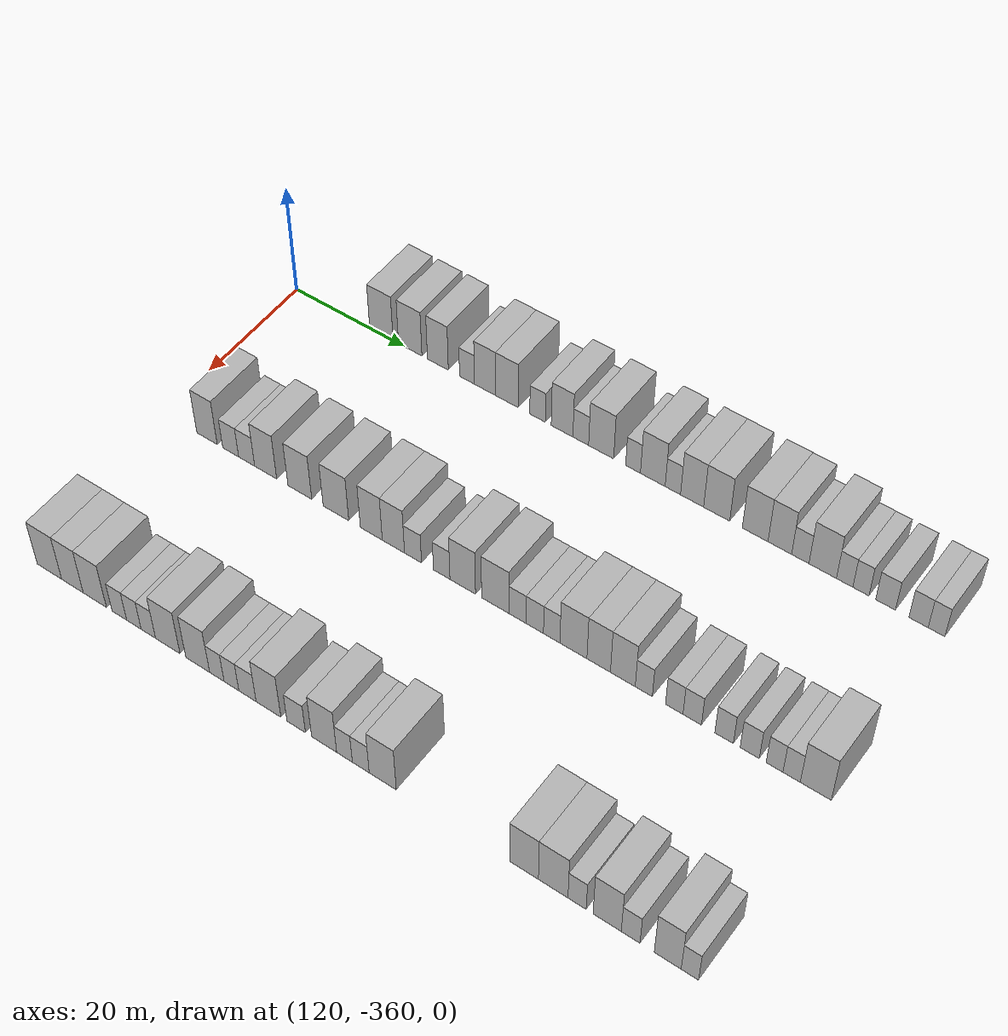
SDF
<sdf version="1.6">
 <world name="default">
  <model name="building_698">
   <static>1</static>
   <pose>115.0000 -344.3239 0 0.000000 0.000000 0.000000</pose>
   <link name="link">
    <pose>0 0 4.50 0 0 0</pose>
    <collision name="collision"><geometry><box><size>10.0000 4.2863 9.0000</size></box></geometry></collision>
    <visual name="visual">
     <cast_shadows>0</cast_shadows>
     <geometry><box><size>10.0000 4.2863 9.0000</size></box></geometry>
     <material>
      <script>
       <uri>model://HANNAS_wall/materials/scripts</uri>
       <uri>model://HANNAS_wall/materials/textures</uri>
       <name>vrc/HANNAS_wall</name>
      </script>
     </material>
    </visual>
   </link>
  </model>
  <model name="building_699">
   <static>1</static>
   <pose>115.0000 -339.0584 0 0.000000 0.000000 0.000000</pose>
   <link name="link">
    <pose>0 0 4.50 0 0 0</pose>
    <collision name="collision"><geometry><box><size>10.0000 4.2447 9.0000</size></box></geometry></collision>
    <visual name="visual">
     <cast_shadows>0</cast_shadows>
     <geometry><box><size>10.0000 4.2447 9.0000</size></box></geometry>
     <material>
      <script>
       <uri>model://HANNAS_wall/materials/scripts</uri>
       <uri>model://HANNAS_wall/materials/textures</uri>
       <name>vrc/HANNAS_wall</name>
      </script>
     </material>
    </visual>
   </link>
  </model>
  <model name="building_700">
   <static>1</static>
   <pose>115.0000 -334.0621 0 0.000000 0.000000 0.000000</pose>
   <link name="link">
    <pose>0 0 4.50 0 0 0</pose>
    <collision name="collision"><geometry><box><size>10.0000 3.7480 9.0000</size></box></geometry></collision>
    <visual name="visual">
     <cast_shadows>0</cast_shadows>
     <geometry><box><size>10.0000 3.7480 9.0000</size></box></geometry>
     <material>
      <script>
       <uri>model://HANNAS_wall/materials/scripts</uri>
       <uri>model://HANNAS_wall/materials/textures</uri>
       <name>vrc/HANNAS_wall</name>
      </script>
     </material>
    </visual>
   </link>
  </model>
  <model name="building_701">
   <static>1</static>
   <pose>115.0000 -328.8689 0 0.000000 0.000000 0.000000</pose>
   <link name="link">
    <pose>0 0 3.00 0 0 0</pose>
    <collision name="collision"><geometry><box><size>10.0000 2.6384 6.0000</size></box></geometry></collision>
    <visual name="visual">
     <cast_shadows>0</cast_shadows>
     <geometry><box><size>10.0000 2.6384 6.0000</size></box></geometry>
     <material>
      <script>
       <uri>model://HANNAS_wall/materials/scripts</uri>
       <uri>model://HANNAS_wall/materials/textures</uri>
       <name>vrc/HANNAS_wall</name>
      </script>
     </material>
    </visual>
   </link>
  </model>
  <model name="building_702">
   <static>1</static>
   <pose>115.0000 -325.6895 0 0.000000 0.000000 0.000000</pose>
   <link name="link">
    <pose>0 0 4.50 0 0 0</pose>
    <collision name="collision"><geometry><box><size>10.0000 3.7204 9.0000</size></box></geometry></collision>
    <visual name="visual">
     <cast_shadows>0</cast_shadows>
     <geometry><box><size>10.0000 3.7204 9.0000</size></box></geometry>
     <material>
      <script>
       <uri>model://HANNAS_wall/materials/scripts</uri>
       <uri>model://HANNAS_wall/materials/textures</uri>
       <name>vrc/HANNAS_wall</name>
      </script>
     </material>
    </visual>
   </link>
  </model>
  <model name="building_703">
   <static>1</static>
   <pose>115.0000 -321.8538 0 0.000000 0.000000 0.000000</pose>
   <link name="link">
    <pose>0 0 4.50 0 0 0</pose>
    <collision name="collision"><geometry><box><size>10.0000 3.9509 9.0000</size></box></geometry></collision>
    <visual name="visual">
     <cast_shadows>0</cast_shadows>
     <geometry><box><size>10.0000 3.9509 9.0000</size></box></geometry>
     <material>
      <script>
       <uri>model://HANNAS_wall/materials/scripts</uri>
       <uri>model://HANNAS_wall/materials/textures</uri>
       <name>vrc/HANNAS_wall</name>
      </script>
     </material>
    </visual>
   </link>
  </model>
  <model name="building_704">
   <static>1</static>
   <pose>115.0000 -316.5359 0 0.000000 0.000000 0.000000</pose>
   <link name="link">
    <pose>0 0 3.00 0 0 0</pose>
    <collision name="collision"><geometry><box><size>10.0000 2.6850 6.0000</size></box></geometry></collision>
    <visual name="visual">
     <cast_shadows>0</cast_shadows>
     <geometry><box><size>10.0000 2.6850 6.0000</size></box></geometry>
     <material>
      <script>
       <uri>model://HANNAS_wall/materials/scripts</uri>
       <uri>model://HANNAS_wall/materials/textures</uri>
       <name>vrc/HANNAS_wall</name>
      </script>
     </material>
    </visual>
   </link>
  </model>
  <model name="building_705">
   <static>1</static>
   <pose>115.0000 -312.3453 0 0.000000 0.000000 0.000000</pose>
   <link name="link">
    <pose>0 0 4.50 0 0 0</pose>
    <collision name="collision"><geometry><box><size>10.0000 3.6962 9.0000</size></box></geometry></collision>
    <visual name="visual">
     <cast_shadows>0</cast_shadows>
     <geometry><box><size>10.0000 3.6962 9.0000</size></box></geometry>
     <material>
      <script>
       <uri>model://HANNAS_wall/materials/scripts</uri>
       <uri>model://HANNAS_wall/materials/textures</uri>
       <name>vrc/HANNAS_wall</name>
      </script>
     </material>
    </visual>
   </link>
  </model>
  <model name="building_706">
   <static>1</static>
   <pose>115.0000 -309.1652 0 0.000000 0.000000 0.000000</pose>
   <link name="link">
    <pose>0 0 3.00 0 0 0</pose>
    <collision name="collision"><geometry><box><size>10.0000 2.6639 6.0000</size></box></geometry></collision>
    <visual name="visual">
     <cast_shadows>0</cast_shadows>
     <geometry><box><size>10.0000 2.6639 6.0000</size></box></geometry>
     <material>
      <script>
       <uri>model://HANNAS_wall/materials/scripts</uri>
       <uri>model://HANNAS_wall/materials/textures</uri>
       <name>vrc/HANNAS_wall</name>
      </script>
     </material>
    </visual>
   </link>
  </model>
  <model name="building_707">
   <static>1</static>
   <pose>115.0000 -305.7314 0 0.000000 0.000000 0.000000</pose>
   <link name="link">
    <pose>0 0 4.50 0 0 0</pose>
    <collision name="collision"><geometry><box><size>10.0000 4.2036 9.0000</size></box></geometry></collision>
    <visual name="visual">
     <cast_shadows>0</cast_shadows>
     <geometry><box><size>10.0000 4.2036 9.0000</size></box></geometry>
     <material>
      <script>
       <uri>model://HANNAS_wall/materials/scripts</uri>
       <uri>model://HANNAS_wall/materials/textures</uri>
       <name>vrc/HANNAS_wall</name>
      </script>
     </material>
    </visual>
   </link>
  </model>
  <model name="building_708">
   <static>1</static>
   <pose>115.0000 -300.4046 0 0.000000 0.000000 0.000000</pose>
   <link name="link">
    <pose>0 0 3.00 0 0 0</pose>
    <collision name="collision"><geometry><box><size>10.0000 2.4500 6.0000</size></box></geometry></collision>
    <visual name="visual">
     <cast_shadows>0</cast_shadows>
     <geometry><box><size>10.0000 2.4500 6.0000</size></box></geometry>
     <material>
      <script>
       <uri>model://HANNAS_wall/materials/scripts</uri>
       <uri>model://HANNAS_wall/materials/textures</uri>
       <name>vrc/HANNAS_wall</name>
      </script>
     </material>
    </visual>
   </link>
  </model>
  <model name="building_709">
   <static>1</static>
   <pose>115.0000 -297.1485 0 0.000000 0.000000 0.000000</pose>
   <link name="link">
    <pose>0 0 4.50 0 0 0</pose>
    <collision name="collision"><geometry><box><size>10.0000 4.0622 9.0000</size></box></geometry></collision>
    <visual name="visual">
     <cast_shadows>0</cast_shadows>
     <geometry><box><size>10.0000 4.0622 9.0000</size></box></geometry>
     <material>
      <script>
       <uri>model://HANNAS_wall/materials/scripts</uri>
       <uri>model://HANNAS_wall/materials/textures</uri>
       <name>vrc/HANNAS_wall</name>
      </script>
     </material>
    </visual>
   </link>
  </model>
  <model name="building_710">
   <static>1</static>
   <pose>115.0000 -293.8592 0 0.000000 0.000000 0.000000</pose>
   <link name="link">
    <pose>0 0 3.00 0 0 0</pose>
    <collision name="collision"><geometry><box><size>10.0000 2.5164 6.0000</size></box></geometry></collision>
    <visual name="visual">
     <cast_shadows>0</cast_shadows>
     <geometry><box><size>10.0000 2.5164 6.0000</size></box></geometry>
     <material>
      <script>
       <uri>model://HANNAS_wall/materials/scripts</uri>
       <uri>model://HANNAS_wall/materials/textures</uri>
       <name>vrc/HANNAS_wall</name>
      </script>
     </material>
    </visual>
   </link>
  </model>
  <model name="building_711">
   <static>1</static>
   <pose>115.0000 -290.7295 0 0.000000 0.000000 0.000000</pose>
   <link name="link">
    <pose>0 0 4.50 0 0 0</pose>
    <collision name="collision"><geometry><box><size>10.0000 3.7432 9.0000</size></box></geometry></collision>
    <visual name="visual">
     <cast_shadows>0</cast_shadows>
     <geometry><box><size>10.0000 3.7432 9.0000</size></box></geometry>
     <material>
      <script>
       <uri>model://HANNAS_wall/materials/scripts</uri>
       <uri>model://HANNAS_wall/materials/textures</uri>
       <name>vrc/HANNAS_wall</name>
      </script>
     </material>
    </visual>
   </link>
  </model>
  <model name="building_712">
   <static>1</static>
   <pose>115.0000 -286.7610 0 0.000000 0.000000 0.000000</pose>
   <link name="link">
    <pose>0 0 4.50 0 0 0</pose>
    <collision name="collision"><geometry><box><size>10.0000 4.1938 9.0000</size></box></geometry></collision>
    <visual name="visual">
     <cast_shadows>0</cast_shadows>
     <geometry><box><size>10.0000 4.1938 9.0000</size></box></geometry>
     <material>
      <script>
       <uri>model://HANNAS_wall/materials/scripts</uri>
       <uri>model://HANNAS_wall/materials/textures</uri>
       <name>vrc/HANNAS_wall</name>
      </script>
     </material>
    </visual>
   </link>
  </model>
  <model name="building_713">
   <static>1</static>
   <pose>115.0000 -280.6291 0 0.000000 0.000000 0.000000</pose>
   <link name="link">
    <pose>0 0 4.50 0 0 0</pose>
    <collision name="collision"><geometry><box><size>10.0000 4.0701 9.0000</size></box></geometry></collision>
    <visual name="visual">
     <cast_shadows>0</cast_shadows>
     <geometry><box><size>10.0000 4.0701 9.0000</size></box></geometry>
     <material>
      <script>
       <uri>model://HANNAS_wall/materials/scripts</uri>
       <uri>model://HANNAS_wall/materials/textures</uri>
       <name>vrc/HANNAS_wall</name>
      </script>
     </material>
    </visual>
   </link>
  </model>
  <model name="building_714">
   <static>1</static>
   <pose>115.0000 -276.7433 0 0.000000 0.000000 0.000000</pose>
   <link name="link">
    <pose>0 0 4.50 0 0 0</pose>
    <collision name="collision"><geometry><box><size>10.0000 3.7015 9.0000</size></box></geometry></collision>
    <visual name="visual">
     <cast_shadows>0</cast_shadows>
     <geometry><box><size>10.0000 3.7015 9.0000</size></box></geometry>
     <material>
      <script>
       <uri>model://HANNAS_wall/materials/scripts</uri>
       <uri>model://HANNAS_wall/materials/textures</uri>
       <name>vrc/HANNAS_wall</name>
      </script>
     </material>
    </visual>
   </link>
  </model>
  <model name="building_715">
   <static>1</static>
   <pose>115.0000 -273.5481 0 0.000000 0.000000 0.000000</pose>
   <link name="link">
    <pose>0 0 3.00 0 0 0</pose>
    <collision name="collision"><geometry><box><size>10.0000 2.6889 6.0000</size></box></geometry></collision>
    <visual name="visual">
     <cast_shadows>0</cast_shadows>
     <geometry><box><size>10.0000 2.6889 6.0000</size></box></geometry>
     <material>
      <script>
       <uri>model://HANNAS_wall/materials/scripts</uri>
       <uri>model://HANNAS_wall/materials/textures</uri>
       <name>vrc/HANNAS_wall</name>
      </script>
     </material>
    </visual>
   </link>
  </model>
  <model name="building_716">
   <static>1</static>
   <pose>115.0000 -270.0786 0 0.000000 0.000000 0.000000</pose>
   <link name="link">
    <pose>0 0 4.50 0 0 0</pose>
    <collision name="collision"><geometry><box><size>10.0000 4.2502 9.0000</size></box></geometry></collision>
    <visual name="visual">
     <cast_shadows>0</cast_shadows>
     <geometry><box><size>10.0000 4.2502 9.0000</size></box></geometry>
     <material>
      <script>
       <uri>model://HANNAS_wall/materials/scripts</uri>
       <uri>model://HANNAS_wall/materials/textures</uri>
       <name>vrc/HANNAS_wall</name>
      </script>
     </material>
    </visual>
   </link>
  </model>
  <model name="building_717">
   <static>1</static>
   <pose>115.0000 -266.7008 0 0.000000 0.000000 0.000000</pose>
   <link name="link">
    <pose>0 0 3.00 0 0 0</pose>
    <collision name="collision"><geometry><box><size>10.0000 2.5054 6.0000</size></box></geometry></collision>
    <visual name="visual">
     <cast_shadows>0</cast_shadows>
     <geometry><box><size>10.0000 2.5054 6.0000</size></box></geometry>
     <material>
      <script>
       <uri>model://HANNAS_wall/materials/scripts</uri>
       <uri>model://HANNAS_wall/materials/textures</uri>
       <name>vrc/HANNAS_wall</name>
      </script>
     </material>
    </visual>
   </link>
  </model>
  <model name="building_718">
   <static>1</static>
   <pose>115.0000 -264.2221 0 0.000000 0.000000 0.000000</pose>
   <link name="link">
    <pose>0 0 3.00 0 0 0</pose>
    <collision name="collision"><geometry><box><size>10.0000 2.4522 6.0000</size></box></geometry></collision>
    <visual name="visual">
     <cast_shadows>0</cast_shadows>
     <geometry><box><size>10.0000 2.4522 6.0000</size></box></geometry>
     <material>
      <script>
       <uri>model://HANNAS_wall/materials/scripts</uri>
       <uri>model://HANNAS_wall/materials/textures</uri>
       <name>vrc/HANNAS_wall</name>
      </script>
     </material>
    </visual>
   </link>
  </model>
  <model name="building_719">
   <static>1</static>
   <pose>115.0000 -260.5060 0 0.000000 0.000000 0.000000</pose>
   <link name="link">
    <pose>0 0 3.00 0 0 0</pose>
    <collision name="collision"><geometry><box><size>10.0000 2.9799 6.0000</size></box></geometry></collision>
    <visual name="visual">
     <cast_shadows>0</cast_shadows>
     <geometry><box><size>10.0000 2.9799 6.0000</size></box></geometry>
     <material>
      <script>
       <uri>model://HANNAS_wall/materials/scripts</uri>
       <uri>model://HANNAS_wall/materials/textures</uri>
       <name>vrc/HANNAS_wall</name>
      </script>
     </material>
    </visual>
   </link>
  </model>
  <model name="building_720">
   <static>1</static>
   <pose>115.0000 -255.5807 0 0.000000 0.000000 0.000000</pose>
   <link name="link">
    <pose>0 0 3.00 0 0 0</pose>
    <collision name="collision"><geometry><box><size>10.0000 2.8708 6.0000</size></box></geometry></collision>
    <visual name="visual">
     <cast_shadows>0</cast_shadows>
     <geometry><box><size>10.0000 2.8708 6.0000</size></box></geometry>
     <material>
      <script>
       <uri>model://HANNAS_wall/materials/scripts</uri>
       <uri>model://HANNAS_wall/materials/textures</uri>
       <name>vrc/HANNAS_wall</name>
      </script>
     </material>
    </visual>
   </link>
  </model>
  <model name="building_721">
   <static>1</static>
   <pose>115.0000 -252.9093 0 0.000000 0.000000 0.000000</pose>
   <link name="link">
    <pose>0 0 3.00 0 0 0</pose>
    <collision name="collision"><geometry><box><size>10.0000 2.4721 6.0000</size></box></geometry></collision>
    <visual name="visual">
     <cast_shadows>0</cast_shadows>
     <geometry><box><size>10.0000 2.4721 6.0000</size></box></geometry>
     <material>
      <script>
       <uri>model://HANNAS_wall/materials/scripts</uri>
       <uri>model://HANNAS_wall/materials/textures</uri>
       <name>vrc/HANNAS_wall</name>
      </script>
     </material>
    </visual>
   </link>
  </model>
  <model name="building_921">
   <static>1</static>
   <pose>145.0000 -352.0130 0 0.000000 0.000000 0.000000</pose>
   <link name="link">
    <pose>0 0 4.50 0 0 0</pose>
    <collision name="collision"><geometry><box><size>10.0000 3.7323 9.0000</size></box></geometry></collision>
    <visual name="visual">
     <cast_shadows>0</cast_shadows>
     <geometry><box><size>10.0000 3.7323 9.0000</size></box></geometry>
     <material>
      <script>
       <uri>model://HANNAS_wall/materials/scripts</uri>
       <uri>model://HANNAS_wall/materials/textures</uri>
       <name>vrc/HANNAS_wall</name>
      </script>
     </material>
    </visual>
   </link>
  </model>
  <model name="building_922">
   <static>1</static>
   <pose>145.0000 -347.7058 0 0.000000 0.000000 0.000000</pose>
   <link name="link">
    <pose>0 0 3.00 0 0 0</pose>
    <collision name="collision"><geometry><box><size>10.0000 2.8821 6.0000</size></box></geometry></collision>
    <visual name="visual">
     <cast_shadows>0</cast_shadows>
     <geometry><box><size>10.0000 2.8821 6.0000</size></box></geometry>
     <material>
      <script>
       <uri>model://HANNAS_wall/materials/scripts</uri>
       <uri>model://HANNAS_wall/materials/textures</uri>
       <name>vrc/HANNAS_wall</name>
      </script>
     </material>
    </visual>
   </link>
  </model>
  <model name="building_923">
   <static>1</static>
   <pose>145.0000 -344.8221 0 0.000000 0.000000 0.000000</pose>
   <link name="link">
    <pose>0 0 3.00 0 0 0</pose>
    <collision name="collision"><geometry><box><size>10.0000 2.8853 6.0000</size></box></geometry></collision>
    <visual name="visual">
     <cast_shadows>0</cast_shadows>
     <geometry><box><size>10.0000 2.8853 6.0000</size></box></geometry>
     <material>
      <script>
       <uri>model://HANNAS_wall/materials/scripts</uri>
       <uri>model://HANNAS_wall/materials/textures</uri>
       <name>vrc/HANNAS_wall</name>
      </script>
     </material>
    </visual>
   </link>
  </model>
  <model name="building_924">
   <static>1</static>
   <pose>145.0000 -341.4130 0 0.000000 0.000000 0.000000</pose>
   <link name="link">
    <pose>0 0 4.50 0 0 0</pose>
    <collision name="collision"><geometry><box><size>10.0000 3.9329 9.0000</size></box></geometry></collision>
    <visual name="visual">
     <cast_shadows>0</cast_shadows>
     <geometry><box><size>10.0000 3.9329 9.0000</size></box></geometry>
     <material>
      <script>
       <uri>model://HANNAS_wall/materials/scripts</uri>
       <uri>model://HANNAS_wall/materials/textures</uri>
       <name>vrc/HANNAS_wall</name>
      </script>
     </material>
    </visual>
   </link>
  </model>
  <model name="building_925">
   <static>1</static>
   <pose>145.0000 -335.3562 0 0.000000 0.000000 0.000000</pose>
   <link name="link">
    <pose>0 0 4.50 0 0 0</pose>
    <collision name="collision"><geometry><box><size>10.0000 4.1808 9.0000</size></box></geometry></collision>
    <visual name="visual">
     <cast_shadows>0</cast_shadows>
     <geometry><box><size>10.0000 4.1808 9.0000</size></box></geometry>
     <material>
      <script>
       <uri>model://HANNAS_wall/materials/scripts</uri>
       <uri>model://HANNAS_wall/materials/textures</uri>
       <name>vrc/HANNAS_wall</name>
      </script>
     </material>
    </visual>
   </link>
  </model>
  <model name="building_926">
   <static>1</static>
   <pose>145.0000 -329.0455 0 0.000000 0.000000 0.000000</pose>
   <link name="link">
    <pose>0 0 4.50 0 0 0</pose>
    <collision name="collision"><geometry><box><size>10.0000 4.4404 9.0000</size></box></geometry></collision>
    <visual name="visual">
     <cast_shadows>0</cast_shadows>
     <geometry><box><size>10.0000 4.4404 9.0000</size></box></geometry>
     <material>
      <script>
       <uri>model://HANNAS_wall/materials/scripts</uri>
       <uri>model://HANNAS_wall/materials/textures</uri>
       <name>vrc/HANNAS_wall</name>
      </script>
     </material>
    </visual>
   </link>
  </model>
  <model name="building_927">
   <static>1</static>
   <pose>145.0000 -322.9554 0 0.000000 0.000000 0.000000</pose>
   <link name="link">
    <pose>0 0 4.50 0 0 0</pose>
    <collision name="collision"><geometry><box><size>10.0000 3.7397 9.0000</size></box></geometry></collision>
    <visual name="visual">
     <cast_shadows>0</cast_shadows>
     <geometry><box><size>10.0000 3.7397 9.0000</size></box></geometry>
     <material>
      <script>
       <uri>model://HANNAS_wall/materials/scripts</uri>
       <uri>model://HANNAS_wall/materials/textures</uri>
       <name>vrc/HANNAS_wall</name>
      </script>
     </material>
    </visual>
   </link>
  </model>
  <model name="building_928">
   <static>1</static>
   <pose>145.0000 -319.2041 0 0.000000 0.000000 0.000000</pose>
   <link name="link">
    <pose>0 0 4.50 0 0 0</pose>
    <collision name="collision"><geometry><box><size>10.0000 3.7630 9.0000</size></box></geometry></collision>
    <visual name="visual">
     <cast_shadows>0</cast_shadows>
     <geometry><box><size>10.0000 3.7630 9.0000</size></box></geometry>
     <material>
      <script>
       <uri>model://HANNAS_wall/materials/scripts</uri>
       <uri>model://HANNAS_wall/materials/textures</uri>
       <name>vrc/HANNAS_wall</name>
      </script>
     </material>
    </visual>
   </link>
  </model>
  <model name="building_929">
   <static>1</static>
   <pose>145.0000 -315.9001 0 0.000000 0.000000 0.000000</pose>
   <link name="link">
    <pose>0 0 3.00 0 0 0</pose>
    <collision name="collision"><geometry><box><size>10.0000 2.8450 6.0000</size></box></geometry></collision>
    <visual name="visual">
     <cast_shadows>0</cast_shadows>
     <geometry><box><size>10.0000 2.8450 6.0000</size></box></geometry>
     <material>
      <script>
       <uri>model://HANNAS_wall/materials/scripts</uri>
       <uri>model://HANNAS_wall/materials/textures</uri>
       <name>vrc/HANNAS_wall</name>
      </script>
     </material>
    </visual>
   </link>
  </model>
  <model name="building_930">
   <static>1</static>
   <pose>145.0000 -311.1105 0 0.000000 0.000000 0.000000</pose>
   <link name="link">
    <pose>0 0 3.00 0 0 0</pose>
    <collision name="collision"><geometry><box><size>10.0000 2.7343 6.0000</size></box></geometry></collision>
    <visual name="visual">
     <cast_shadows>0</cast_shadows>
     <geometry><box><size>10.0000 2.7343 6.0000</size></box></geometry>
     <material>
      <script>
       <uri>model://HANNAS_wall/materials/scripts</uri>
       <uri>model://HANNAS_wall/materials/textures</uri>
       <name>vrc/HANNAS_wall</name>
      </script>
     </material>
    </visual>
   </link>
  </model>
  <model name="building_931">
   <static>1</static>
   <pose>145.0000 -307.6409 0 0.000000 0.000000 0.000000</pose>
   <link name="link">
    <pose>0 0 4.50 0 0 0</pose>
    <collision name="collision"><geometry><box><size>10.0000 4.2047 9.0000</size></box></geometry></collision>
    <visual name="visual">
     <cast_shadows>0</cast_shadows>
     <geometry><box><size>10.0000 4.2047 9.0000</size></box></geometry>
     <material>
      <script>
       <uri>model://HANNAS_wall/materials/scripts</uri>
       <uri>model://HANNAS_wall/materials/textures</uri>
       <name>vrc/HANNAS_wall</name>
      </script>
     </material>
    </visual>
   </link>
  </model>
  <model name="building_932">
   <static>1</static>
   <pose>145.0000 -302.3242 0 0.000000 0.000000 0.000000</pose>
   <link name="link">
    <pose>0 0 4.50 0 0 0</pose>
    <collision name="collision"><geometry><box><size>10.0000 4.4288 9.0000</size></box></geometry></collision>
    <visual name="visual">
     <cast_shadows>0</cast_shadows>
     <geometry><box><size>10.0000 4.4288 9.0000</size></box></geometry>
     <material>
      <script>
       <uri>model://HANNAS_wall/materials/scripts</uri>
       <uri>model://HANNAS_wall/materials/textures</uri>
       <name>vrc/HANNAS_wall</name>
      </script>
     </material>
    </visual>
   </link>
  </model>
  <model name="building_933">
   <static>1</static>
   <pose>145.0000 -298.7485 0 0.000000 0.000000 0.000000</pose>
   <link name="link">
    <pose>0 0 3.00 0 0 0</pose>
    <collision name="collision"><geometry><box><size>10.0000 2.7225 6.0000</size></box></geometry></collision>
    <visual name="visual">
     <cast_shadows>0</cast_shadows>
     <geometry><box><size>10.0000 2.7225 6.0000</size></box></geometry>
     <material>
      <script>
       <uri>model://HANNAS_wall/materials/scripts</uri>
       <uri>model://HANNAS_wall/materials/textures</uri>
       <name>vrc/HANNAS_wall</name>
      </script>
     </material>
    </visual>
   </link>
  </model>
  <model name="building_934">
   <static>1</static>
   <pose>145.0000 -295.9792 0 0.000000 0.000000 0.000000</pose>
   <link name="link">
    <pose>0 0 3.00 0 0 0</pose>
    <collision name="collision"><geometry><box><size>10.0000 2.8161 6.0000</size></box></geometry></collision>
    <visual name="visual">
     <cast_shadows>0</cast_shadows>
     <geometry><box><size>10.0000 2.8161 6.0000</size></box></geometry>
     <material>
      <script>
       <uri>model://HANNAS_wall/materials/scripts</uri>
       <uri>model://HANNAS_wall/materials/textures</uri>
       <name>vrc/HANNAS_wall</name>
      </script>
     </material>
    </visual>
   </link>
  </model>
  <model name="building_935">
   <static>1</static>
   <pose>145.0000 -293.2710 0 0.000000 0.000000 0.000000</pose>
   <link name="link">
    <pose>0 0 3.00 0 0 0</pose>
    <collision name="collision"><geometry><box><size>10.0000 2.6003 6.0000</size></box></geometry></collision>
    <visual name="visual">
     <cast_shadows>0</cast_shadows>
     <geometry><box><size>10.0000 2.6003 6.0000</size></box></geometry>
     <material>
      <script>
       <uri>model://HANNAS_wall/materials/scripts</uri>
       <uri>model://HANNAS_wall/materials/textures</uri>
       <name>vrc/HANNAS_wall</name>
      </script>
     </material>
    </visual>
   </link>
  </model>
  <model name="building_936">
   <static>1</static>
   <pose>145.0000 -289.8425 0 0.000000 0.000000 0.000000</pose>
   <link name="link">
    <pose>0 0 4.50 0 0 0</pose>
    <collision name="collision"><geometry><box><size>10.0000 4.2567 9.0000</size></box></geometry></collision>
    <visual name="visual">
     <cast_shadows>0</cast_shadows>
     <geometry><box><size>10.0000 4.2567 9.0000</size></box></geometry>
     <material>
      <script>
       <uri>model://HANNAS_wall/materials/scripts</uri>
       <uri>model://HANNAS_wall/materials/textures</uri>
       <name>vrc/HANNAS_wall</name>
      </script>
     </material>
    </visual>
   </link>
  </model>
  <model name="building_937">
   <static>1</static>
   <pose>145.0000 -285.8827 0 0.000000 0.000000 0.000000</pose>
   <link name="link">
    <pose>0 0 4.50 0 0 0</pose>
    <collision name="collision"><geometry><box><size>10.0000 3.6630 9.0000</size></box></geometry></collision>
    <visual name="visual">
     <cast_shadows>0</cast_shadows>
     <geometry><box><size>10.0000 3.6630 9.0000</size></box></geometry>
     <material>
      <script>
       <uri>model://HANNAS_wall/materials/scripts</uri>
       <uri>model://HANNAS_wall/materials/textures</uri>
       <name>vrc/HANNAS_wall</name>
      </script>
     </material>
    </visual>
   </link>
  </model>
  <model name="building_938">
   <static>1</static>
   <pose>145.0000 -282.1370 0 0.000000 0.000000 0.000000</pose>
   <link name="link">
    <pose>0 0 4.50 0 0 0</pose>
    <collision name="collision"><geometry><box><size>10.0000 3.8283 9.0000</size></box></geometry></collision>
    <visual name="visual">
     <cast_shadows>0</cast_shadows>
     <geometry><box><size>10.0000 3.8283 9.0000</size></box></geometry>
     <material>
      <script>
       <uri>model://HANNAS_wall/materials/scripts</uri>
       <uri>model://HANNAS_wall/materials/textures</uri>
       <name>vrc/HANNAS_wall</name>
      </script>
     </material>
    </visual>
   </link>
  </model>
  <model name="building_939">
   <static>1</static>
   <pose>145.0000 -278.9187 0 0.000000 0.000000 0.000000</pose>
   <link name="link">
    <pose>0 0 3.00 0 0 0</pose>
    <collision name="collision"><geometry><box><size>10.0000 2.6083 6.0000</size></box></geometry></collision>
    <visual name="visual">
     <cast_shadows>0</cast_shadows>
     <geometry><box><size>10.0000 2.6083 6.0000</size></box></geometry>
     <material>
      <script>
       <uri>model://HANNAS_wall/materials/scripts</uri>
       <uri>model://HANNAS_wall/materials/textures</uri>
       <name>vrc/HANNAS_wall</name>
      </script>
     </material>
    </visual>
   </link>
  </model>
  <model name="building_940">
   <static>1</static>
   <pose>145.0000 -274.2901 0 0.000000 0.000000 0.000000</pose>
   <link name="link">
    <pose>0 0 3.00 0 0 0</pose>
    <collision name="collision"><geometry><box><size>10.0000 2.6489 6.0000</size></box></geometry></collision>
    <visual name="visual">
     <cast_shadows>0</cast_shadows>
     <geometry><box><size>10.0000 2.6489 6.0000</size></box></geometry>
     <material>
      <script>
       <uri>model://HANNAS_wall/materials/scripts</uri>
       <uri>model://HANNAS_wall/materials/textures</uri>
       <name>vrc/HANNAS_wall</name>
      </script>
     </material>
    </visual>
   </link>
  </model>
  <model name="building_941">
   <static>1</static>
   <pose>145.0000 -271.5812 0 0.000000 0.000000 0.000000</pose>
   <link name="link">
    <pose>0 0 3.00 0 0 0</pose>
    <collision name="collision"><geometry><box><size>10.0000 2.7689 6.0000</size></box></geometry></collision>
    <visual name="visual">
     <cast_shadows>0</cast_shadows>
     <geometry><box><size>10.0000 2.7689 6.0000</size></box></geometry>
     <material>
      <script>
       <uri>model://HANNAS_wall/materials/scripts</uri>
       <uri>model://HANNAS_wall/materials/textures</uri>
       <name>vrc/HANNAS_wall</name>
      </script>
     </material>
    </visual>
   </link>
  </model>
  <model name="building_942">
   <static>1</static>
   <pose>145.0000 -266.8235 0 0.000000 0.000000 0.000000</pose>
   <link name="link">
    <pose>0 0 3.00 0 0 0</pose>
    <collision name="collision"><geometry><box><size>10.0000 2.7465 6.0000</size></box></geometry></collision>
    <visual name="visual">
     <cast_shadows>0</cast_shadows>
     <geometry><box><size>10.0000 2.7465 6.0000</size></box></geometry>
     <material>
      <script>
       <uri>model://HANNAS_wall/materials/scripts</uri>
       <uri>model://HANNAS_wall/materials/textures</uri>
       <name>vrc/HANNAS_wall</name>
      </script>
     </material>
    </visual>
   </link>
  </model>
  <model name="building_943">
   <static>1</static>
   <pose>145.0000 -263.0438 0 0.000000 0.000000 0.000000</pose>
   <link name="link">
    <pose>0 0 3.00 0 0 0</pose>
    <collision name="collision"><geometry><box><size>10.0000 2.8128 6.0000</size></box></geometry></collision>
    <visual name="visual">
     <cast_shadows>0</cast_shadows>
     <geometry><box><size>10.0000 2.8128 6.0000</size></box></geometry>
     <material>
      <script>
       <uri>model://HANNAS_wall/materials/scripts</uri>
       <uri>model://HANNAS_wall/materials/textures</uri>
       <name>vrc/HANNAS_wall</name>
      </script>
     </material>
    </visual>
   </link>
  </model>
  <model name="building_944">
   <static>1</static>
   <pose>145.0000 -259.4163 0 0.000000 0.000000 0.000000</pose>
   <link name="link">
    <pose>0 0 3.00 0 0 0</pose>
    <collision name="collision"><geometry><box><size>10.0000 2.4422 6.0000</size></box></geometry></collision>
    <visual name="visual">
     <cast_shadows>0</cast_shadows>
     <geometry><box><size>10.0000 2.4422 6.0000</size></box></geometry>
     <material>
      <script>
       <uri>model://HANNAS_wall/materials/scripts</uri>
       <uri>model://HANNAS_wall/materials/textures</uri>
       <name>vrc/HANNAS_wall</name>
      </script>
     </material>
    </visual>
   </link>
  </model>
  <model name="building_945">
   <static>1</static>
   <pose>145.0000 -256.9407 0 0.000000 0.000000 0.000000</pose>
   <link name="link">
    <pose>0 0 3.00 0 0 0</pose>
    <collision name="collision"><geometry><box><size>10.0000 2.5089 6.0000</size></box></geometry></collision>
    <visual name="visual">
     <cast_shadows>0</cast_shadows>
     <geometry><box><size>10.0000 2.5089 6.0000</size></box></geometry>
     <material>
      <script>
       <uri>model://HANNAS_wall/materials/scripts</uri>
       <uri>model://HANNAS_wall/materials/textures</uri>
       <name>vrc/HANNAS_wall</name>
      </script>
     </material>
    </visual>
   </link>
  </model>
  <model name="building_946">
   <static>1</static>
   <pose>145.0000 -253.4626 0 0.000000 0.000000 0.000000</pose>
   <link name="link">
    <pose>0 0 4.50 0 0 0</pose>
    <collision name="collision"><geometry><box><size>10.0000 4.4474 9.0000</size></box></geometry></collision>
    <visual name="visual">
     <cast_shadows>0</cast_shadows>
     <geometry><box><size>10.0000 4.4474 9.0000</size></box></geometry>
     <material>
      <script>
       <uri>model://HANNAS_wall/materials/scripts</uri>
       <uri>model://HANNAS_wall/materials/textures</uri>
       <name>vrc/HANNAS_wall</name>
      </script>
     </material>
    </visual>
   </link>
  </model>
  <model name="building_1145">
   <static>1</static>
   <pose>175.0000 -353.9930 0 0.000000 0.000000 0.000000</pose>
   <link name="link">
    <pose>0 0 4.50 0 0 0</pose>
    <collision name="collision"><geometry><box><size>10.0000 4.3904 9.0000</size></box></geometry></collision>
    <visual name="visual">
     <cast_shadows>0</cast_shadows>
     <geometry><box><size>10.0000 4.3904 9.0000</size></box></geometry>
     <material>
      <script>
       <uri>model://HANNAS_wall/materials/scripts</uri>
       <uri>model://HANNAS_wall/materials/textures</uri>
       <name>vrc/HANNAS_wall</name>
      </script>
     </material>
    </visual>
   </link>
  </model>
  <model name="building_1146">
   <static>1</static>
   <pose>175.0000 -349.8681 0 0.000000 0.000000 0.000000</pose>
   <link name="link">
    <pose>0 0 4.50 0 0 0</pose>
    <collision name="collision"><geometry><box><size>10.0000 3.8594 9.0000</size></box></geometry></collision>
    <visual name="visual">
     <cast_shadows>0</cast_shadows>
     <geometry><box><size>10.0000 3.8594 9.0000</size></box></geometry>
     <material>
      <script>
       <uri>model://HANNAS_wall/materials/scripts</uri>
       <uri>model://HANNAS_wall/materials/textures</uri>
       <name>vrc/HANNAS_wall</name>
      </script>
     </material>
    </visual>
   </link>
  </model>
  <model name="building_1147">
   <static>1</static>
   <pose>175.0000 -345.8860 0 0.000000 0.000000 0.000000</pose>
   <link name="link">
    <pose>0 0 4.50 0 0 0</pose>
    <collision name="collision"><geometry><box><size>10.0000 4.1048 9.0000</size></box></geometry></collision>
    <visual name="visual">
     <cast_shadows>0</cast_shadows>
     <geometry><box><size>10.0000 4.1048 9.0000</size></box></geometry>
     <material>
      <script>
       <uri>model://HANNAS_wall/materials/scripts</uri>
       <uri>model://HANNAS_wall/materials/textures</uri>
       <name>vrc/HANNAS_wall</name>
      </script>
     </material>
    </visual>
   </link>
  </model>
  <model name="building_1148">
   <static>1</static>
   <pose>175.0000 -341.5609 0 0.000000 0.000000 0.000000</pose>
   <link name="link">
    <pose>0 0 3.00 0 0 0</pose>
    <collision name="collision"><geometry><box><size>10.0000 2.5455 6.0000</size></box></geometry></collision>
    <visual name="visual">
     <cast_shadows>0</cast_shadows>
     <geometry><box><size>10.0000 2.5455 6.0000</size></box></geometry>
     <material>
      <script>
       <uri>model://HANNAS_wall/materials/scripts</uri>
       <uri>model://HANNAS_wall/materials/textures</uri>
       <name>vrc/HANNAS_wall</name>
      </script>
     </material>
    </visual>
   </link>
  </model>
  <model name="building_1149">
   <static>1</static>
   <pose>175.0000 -339.0280 0 0.000000 0.000000 0.000000</pose>
   <link name="link">
    <pose>0 0 3.00 0 0 0</pose>
    <collision name="collision"><geometry><box><size>10.0000 2.5202 6.0000</size></box></geometry></collision>
    <visual name="visual">
     <cast_shadows>0</cast_shadows>
     <geometry><box><size>10.0000 2.5202 6.0000</size></box></geometry>
     <material>
      <script>
       <uri>model://HANNAS_wall/materials/scripts</uri>
       <uri>model://HANNAS_wall/materials/textures</uri>
       <name>vrc/HANNAS_wall</name>
      </script>
     </material>
    </visual>
   </link>
  </model>
  <model name="building_1150">
   <static>1</static>
   <pose>175.0000 -336.5179 0 0.000000 0.000000 0.000000</pose>
   <link name="link">
    <pose>0 0 3.00 0 0 0</pose>
    <collision name="collision"><geometry><box><size>10.0000 2.5000 6.0000</size></box></geometry></collision>
    <visual name="visual">
     <cast_shadows>0</cast_shadows>
     <geometry><box><size>10.0000 2.5000 6.0000</size></box></geometry>
     <material>
      <script>
       <uri>model://HANNAS_wall/materials/scripts</uri>
       <uri>model://HANNAS_wall/materials/textures</uri>
       <name>vrc/HANNAS_wall</name>
      </script>
     </material>
    </visual>
   </link>
  </model>
  <model name="building_1151">
   <static>1</static>
   <pose>175.0000 -333.1737 0 0.000000 0.000000 0.000000</pose>
   <link name="link">
    <pose>0 0 4.50 0 0 0</pose>
    <collision name="collision"><geometry><box><size>10.0000 4.1884 9.0000</size></box></geometry></collision>
    <visual name="visual">
     <cast_shadows>0</cast_shadows>
     <geometry><box><size>10.0000 4.1884 9.0000</size></box></geometry>
     <material>
      <script>
       <uri>model://HANNAS_wall/materials/scripts</uri>
       <uri>model://HANNAS_wall/materials/textures</uri>
       <name>vrc/HANNAS_wall</name>
      </script>
     </material>
    </visual>
   </link>
  </model>
  <model name="building_1152">
   <static>1</static>
   <pose>175.0000 -328.0631 0 0.000000 0.000000 0.000000</pose>
   <link name="link">
    <pose>0 0 4.50 0 0 0</pose>
    <collision name="collision"><geometry><box><size>10.0000 4.0329 9.0000</size></box></geometry></collision>
    <visual name="visual">
     <cast_shadows>0</cast_shadows>
     <geometry><box><size>10.0000 4.0329 9.0000</size></box></geometry>
     <material>
      <script>
       <uri>model://HANNAS_wall/materials/scripts</uri>
       <uri>model://HANNAS_wall/materials/textures</uri>
       <name>vrc/HANNAS_wall</name>
      </script>
     </material>
    </visual>
   </link>
  </model>
  <model name="building_1153">
   <static>1</static>
   <pose>175.0000 -324.8373 0 0.000000 0.000000 0.000000</pose>
   <link name="link">
    <pose>0 0 3.00 0 0 0</pose>
    <collision name="collision"><geometry><box><size>10.0000 2.4187 6.0000</size></box></geometry></collision>
    <visual name="visual">
     <cast_shadows>0</cast_shadows>
     <geometry><box><size>10.0000 2.4187 6.0000</size></box></geometry>
     <material>
      <script>
       <uri>model://HANNAS_wall/materials/scripts</uri>
       <uri>model://HANNAS_wall/materials/textures</uri>
       <name>vrc/HANNAS_wall</name>
      </script>
     </material>
    </visual>
   </link>
  </model>
  <model name="building_1154">
   <static>1</static>
   <pose>175.0000 -322.3974 0 0.000000 0.000000 0.000000</pose>
   <link name="link">
    <pose>0 0 3.00 0 0 0</pose>
    <collision name="collision"><geometry><box><size>10.0000 2.4611 6.0000</size></box></geometry></collision>
    <visual name="visual">
     <cast_shadows>0</cast_shadows>
     <geometry><box><size>10.0000 2.4611 6.0000</size></box></geometry>
     <material>
      <script>
       <uri>model://HANNAS_wall/materials/scripts</uri>
       <uri>model://HANNAS_wall/materials/textures</uri>
       <name>vrc/HANNAS_wall</name>
      </script>
     </material>
    </visual>
   </link>
  </model>
  <model name="building_1155">
   <static>1</static>
   <pose>175.0000 -319.7332 0 0.000000 0.000000 0.000000</pose>
   <link name="link">
    <pose>0 0 3.00 0 0 0</pose>
    <collision name="collision"><geometry><box><size>10.0000 2.8674 6.0000</size></box></geometry></collision>
    <visual name="visual">
     <cast_shadows>0</cast_shadows>
     <geometry><box><size>10.0000 2.8674 6.0000</size></box></geometry>
     <material>
      <script>
       <uri>model://HANNAS_wall/materials/scripts</uri>
       <uri>model://HANNAS_wall/materials/textures</uri>
       <name>vrc/HANNAS_wall</name>
      </script>
     </material>
    </visual>
   </link>
  </model>
  <model name="building_1156">
   <static>1</static>
   <pose>175.0000 -316.2695 0 0.000000 0.000000 0.000000</pose>
   <link name="link">
    <pose>0 0 4.50 0 0 0</pose>
    <collision name="collision"><geometry><box><size>10.0000 4.0600 9.0000</size></box></geometry></collision>
    <visual name="visual">
     <cast_shadows>0</cast_shadows>
     <geometry><box><size>10.0000 4.0600 9.0000</size></box></geometry>
     <material>
      <script>
       <uri>model://HANNAS_wall/materials/scripts</uri>
       <uri>model://HANNAS_wall/materials/textures</uri>
       <name>vrc/HANNAS_wall</name>
      </script>
     </material>
    </visual>
   </link>
  </model>
  <model name="building_1157">
   <static>1</static>
   <pose>175.0000 -311.7430 0 0.000000 0.000000 0.000000</pose>
   <link name="link">
    <pose>0 0 3.00 0 0 0</pose>
    <collision name="collision"><geometry><box><size>10.0000 2.9930 6.0000</size></box></geometry></collision>
    <visual name="visual">
     <cast_shadows>0</cast_shadows>
     <geometry><box><size>10.0000 2.9930 6.0000</size></box></geometry>
     <material>
      <script>
       <uri>model://HANNAS_wall/materials/scripts</uri>
       <uri>model://HANNAS_wall/materials/textures</uri>
       <name>vrc/HANNAS_wall</name>
      </script>
     </material>
    </visual>
   </link>
  </model>
  <model name="building_1158">
   <static>1</static>
   <pose>175.0000 -307.2397 0 0.000000 0.000000 0.000000</pose>
   <link name="link">
    <pose>0 0 4.50 0 0 0</pose>
    <collision name="collision"><geometry><box><size>10.0000 4.0135 9.0000</size></box></geometry></collision>
    <visual name="visual">
     <cast_shadows>0</cast_shadows>
     <geometry><box><size>10.0000 4.0135 9.0000</size></box></geometry>
     <material>
      <script>
       <uri>model://HANNAS_wall/materials/scripts</uri>
       <uri>model://HANNAS_wall/materials/textures</uri>
       <name>vrc/HANNAS_wall</name>
      </script>
     </material>
    </visual>
   </link>
  </model>
  <model name="building_1159">
   <static>1</static>
   <pose>175.0000 -303.9860 0 0.000000 0.000000 0.000000</pose>
   <link name="link">
    <pose>0 0 3.00 0 0 0</pose>
    <collision name="collision"><geometry><box><size>10.0000 2.4938 6.0000</size></box></geometry></collision>
    <visual name="visual">
     <cast_shadows>0</cast_shadows>
     <geometry><box><size>10.0000 2.4938 6.0000</size></box></geometry>
     <material>
      <script>
       <uri>model://HANNAS_wall/materials/scripts</uri>
       <uri>model://HANNAS_wall/materials/textures</uri>
       <name>vrc/HANNAS_wall</name>
      </script>
     </material>
    </visual>
   </link>
  </model>
  <model name="building_1160">
   <static>1</static>
   <pose>175.0000 -301.4111 0 0.000000 0.000000 0.000000</pose>
   <link name="link">
    <pose>0 0 3.00 0 0 0</pose>
    <collision name="collision"><geometry><box><size>10.0000 2.6560 6.0000</size></box></geometry></collision>
    <visual name="visual">
     <cast_shadows>0</cast_shadows>
     <geometry><box><size>10.0000 2.6560 6.0000</size></box></geometry>
     <material>
      <script>
       <uri>model://HANNAS_wall/materials/scripts</uri>
       <uri>model://HANNAS_wall/materials/textures</uri>
       <name>vrc/HANNAS_wall</name>
      </script>
     </material>
    </visual>
   </link>
  </model>
  <model name="building_1161">
   <static>1</static>
   <pose>175.0000 -297.9658 0 0.000000 0.000000 0.000000</pose>
   <link name="link">
    <pose>0 0 4.50 0 0 0</pose>
    <collision name="collision"><geometry><box><size>10.0000 4.2346 9.0000</size></box></geometry></collision>
    <visual name="visual">
     <cast_shadows>0</cast_shadows>
     <geometry><box><size>10.0000 4.2346 9.0000</size></box></geometry>
     <material>
      <script>
       <uri>model://HANNAS_wall/materials/scripts</uri>
       <uri>model://HANNAS_wall/materials/textures</uri>
       <name>vrc/HANNAS_wall</name>
      </script>
     </material>
    </visual>
   </link>
  </model>
  <model name="building_1162">
   <static>1</static>
   <pose>175.0000 -276.4876 0 0.000000 0.000000 0.000000</pose>
   <link name="link">
    <pose>0 0 4.50 0 0 0</pose>
    <collision name="collision"><geometry><box><size>10.0000 4.2406 9.0000</size></box></geometry></collision>
    <visual name="visual">
     <cast_shadows>0</cast_shadows>
     <geometry><box><size>10.0000 4.2406 9.0000</size></box></geometry>
     <material>
      <script>
       <uri>model://HANNAS_wall/materials/scripts</uri>
       <uri>model://HANNAS_wall/materials/textures</uri>
       <name>vrc/HANNAS_wall</name>
      </script>
     </material>
    </visual>
   </link>
  </model>
  <model name="building_1163">
   <static>1</static>
   <pose>175.0000 -272.2102 0 0.000000 0.000000 0.000000</pose>
   <link name="link">
    <pose>0 0 4.50 0 0 0</pose>
    <collision name="collision"><geometry><box><size>10.0000 4.3142 9.0000</size></box></geometry></collision>
    <visual name="visual">
     <cast_shadows>0</cast_shadows>
     <geometry><box><size>10.0000 4.3142 9.0000</size></box></geometry>
     <material>
      <script>
       <uri>model://HANNAS_wall/materials/scripts</uri>
       <uri>model://HANNAS_wall/materials/textures</uri>
       <name>vrc/HANNAS_wall</name>
      </script>
     </material>
    </visual>
   </link>
  </model>
  <model name="building_1164">
   <static>1</static>
   <pose>175.0000 -268.7391 0 0.000000 0.000000 0.000000</pose>
   <link name="link">
    <pose>0 0 3.00 0 0 0</pose>
    <collision name="collision"><geometry><box><size>10.0000 2.6279 6.0000</size></box></geometry></collision>
    <visual name="visual">
     <cast_shadows>0</cast_shadows>
     <geometry><box><size>10.0000 2.6279 6.0000</size></box></geometry>
     <material>
      <script>
       <uri>model://HANNAS_wall/materials/scripts</uri>
       <uri>model://HANNAS_wall/materials/textures</uri>
       <name>vrc/HANNAS_wall</name>
      </script>
     </material>
    </visual>
   </link>
  </model>
  <model name="building_1165">
   <static>1</static>
   <pose>175.0000 -264.4124 0 0.000000 0.000000 0.000000</pose>
   <link name="link">
    <pose>0 0 4.50 0 0 0</pose>
    <collision name="collision"><geometry><box><size>10.0000 4.0257 9.0000</size></box></geometry></collision>
    <visual name="visual">
     <cast_shadows>0</cast_shadows>
     <geometry><box><size>10.0000 4.0257 9.0000</size></box></geometry>
     <material>
      <script>
       <uri>model://HANNAS_wall/materials/scripts</uri>
       <uri>model://HANNAS_wall/materials/textures</uri>
       <name>vrc/HANNAS_wall</name>
      </script>
     </material>
    </visual>
   </link>
  </model>
  <model name="building_1166">
   <static>1</static>
   <pose>175.0000 -261.0725 0 0.000000 0.000000 0.000000</pose>
   <link name="link">
    <pose>0 0 3.00 0 0 0</pose>
    <collision name="collision"><geometry><box><size>10.0000 2.6539 6.0000</size></box></geometry></collision>
    <visual name="visual">
     <cast_shadows>0</cast_shadows>
     <geometry><box><size>10.0000 2.6539 6.0000</size></box></geometry>
     <material>
      <script>
       <uri>model://HANNAS_wall/materials/scripts</uri>
       <uri>model://HANNAS_wall/materials/textures</uri>
       <name>vrc/HANNAS_wall</name>
      </script>
     </material>
    </visual>
   </link>
  </model>
  <model name="building_1167">
   <static>1</static>
   <pose>175.0000 -255.8664 0 0.000000 0.000000 0.000000</pose>
   <link name="link">
    <pose>0 0 4.50 0 0 0</pose>
    <collision name="collision"><geometry><box><size>10.0000 3.7583 9.0000</size></box></geometry></collision>
    <visual name="visual">
     <cast_shadows>0</cast_shadows>
     <geometry><box><size>10.0000 3.7583 9.0000</size></box></geometry>
     <material>
      <script>
       <uri>model://HANNAS_wall/materials/scripts</uri>
       <uri>model://HANNAS_wall/materials/textures</uri>
       <name>vrc/HANNAS_wall</name>
      </script>
     </material>
    </visual>
   </link>
  </model>
  <model name="building_1168">
   <static>1</static>
   <pose>175.0000 -252.7830 0 0.000000 0.000000 0.000000</pose>
   <link name="link">
    <pose>0 0 3.00 0 0 0</pose>
    <collision name="collision"><geometry><box><size>10.0000 2.4087 6.0000</size></box></geometry></collision>
    <visual name="visual">
     <cast_shadows>0</cast_shadows>
     <geometry><box><size>10.0000 2.4087 6.0000</size></box></geometry>
     <material>
      <script>
       <uri>model://HANNAS_wall/materials/scripts</uri>
       <uri>model://HANNAS_wall/materials/textures</uri>
       <name>vrc/HANNAS_wall</name>
      </script>
     </material>
    </visual>
   </link>
  </model>
 </world>
</sdf>
